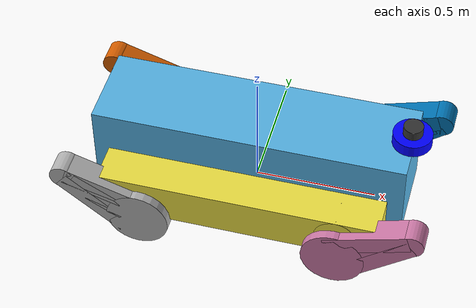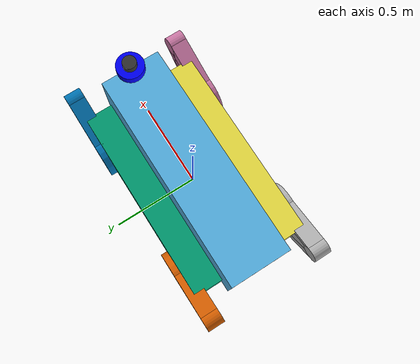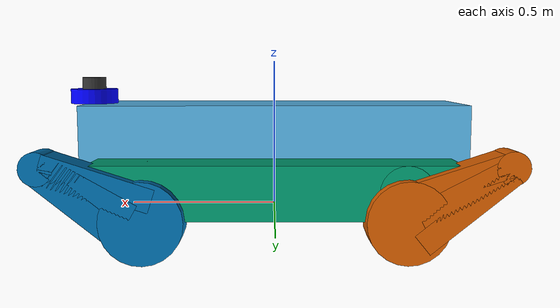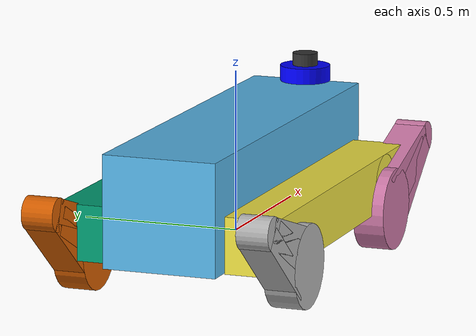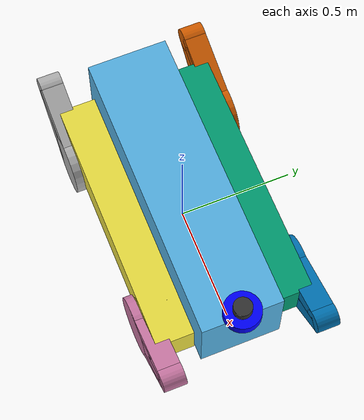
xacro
<?xml version="1.0"?>
<robot name="track" xmlns:xacro="http://www.ros.org/wiki/xacro">

  <!-- Define properties based on your requirements -->
  <xacro:property name="chassis_width" value="0.355"/> <!-- 35.5 cm -->
  <xacro:property name="total_width" value="0.695"/> <!-- 69.5 cm -->
  <xacro:property name="track_width" value="0.165"/> <!-- 16.5 cm -->
  <xacro:property name="vehicle_length" value="1.285"/> <!-- 128.5 cm -->
  <xacro:property name="vehicle_height" value="0.575"/> <!-- 57.5 cm -->

  <!-- Calculated dimensions -->
  <xacro:property name="track_length" value="${vehicle_length * 0.9}"/>
  <xacro:property name="chassis_height" value="${vehicle_height * 0.6}"/>
  <xacro:property name="wheel_radius" value="${vehicle_height * 0.3}"/>
  <xacro:property name="wheel_sep_length" value="${track_length * 0.7}"/>

  <!-- Additional calculated values for positioning -->
  <xacro:property name="track_offset_y" value="${(total_width - track_width) / 2}"/> <!-- 0.265 m from center -->

  <!-- ENHANCED FLIPPER DIMENSIONS -->
  <xacro:property name="flipper_wheel_radius" value="${wheel_radius * 0.75}"/> <!-- Increased from 0.5 to 0.75 -->
  <xacro:property name="flipper_small_wheel_radius" value="${flipper_wheel_radius * 0.4}"/> <!-- Proportionally larger -->
  <xacro:property name="flipper_length" value="0.35"/> <!-- Increased from 0.33 to 0.50 -->
  <xacro:property name="flipper_width" value="${track_width * 0.6}"/> <!-- Increased from 0.3 to 0.4 -->
  <xacro:property name="flipper_bar_height" value="0.075"/> <!-- Increased from 0.055 to 0.075 -->
  <xacro:property name="flipper_middle_bar_width" value="0.28"/> <!-- Increased from 0.2 to 0.28 -->
  <xacro:property name="flipper_middle_bar_height" value="0.09"/> <!-- Increased from 0.07 to 0.09 -->

  <!-- Base Footprint (Ground Plane Reference) -->

  <link name="base_footprint"/>

  <joint name="base_joint" type="fixed">
    <parent link="base_footprint"/>
    <child link="base_link"/>
    <origin xyz="0.0 0.0 0.010" rpy="0 0 0"/>
  </joint>

  <!-- Base Link (Chassis) -->
  <link name="base_link">
    <inertial>
      <origin xyz="0 0 ${chassis_height/2}" rpy="0 0 0"/>
      <mass value="13.14"/>
      <inertia ixx="0.10019" ixy="0" ixz="0"
               iyy="0.345043" iyz="0" izz="0.302044"/>
    </inertial>
    <collision>
      <origin xyz="0 0 ${chassis_height/2}" rpy="0 0 0"/>
      <geometry>
        <box size="${vehicle_length} ${chassis_width} ${chassis_height}"/>
      </geometry>
    </collision>
    <visual>
      <origin xyz="0 0 ${chassis_height/2}" rpy="0 0 0"/>
      <geometry>
        <box size="${vehicle_length} ${chassis_width} ${chassis_height}"/>
      </geometry>
    </visual>
  </link>

  <!-- Left Track -->
  <link name="left_track">
    <inertial>
      <origin xyz="0 0 0.0141" rpy="0 0 0"/>
      <mass value="6.06"/>
      <inertia ixx="0.002731" ixy="0" ixz="0"
               iyy="0.032554" iyz="0.000015" izz="0.031391"/>
    </inertial>
    <collision name="left_track_collision">
      <origin xyz="0 0 ${wheel_radius/2}" rpy="1.5708 0 1.5708"/>
      <geometry>
        <box size="${track_width} ${wheel_radius} ${track_length}"/>
      </geometry>
    </collision>
    <collision name="left_track_collision_1">
      <origin xyz="${wheel_sep_length/2} 0 ${wheel_radius/2}" rpy="1.5708 0 0"/>
      <geometry>
        <cylinder length="${track_width}" radius="${wheel_radius/2}"/>
      </geometry>
    </collision>
    <collision name="left_track_collision_2">
      <origin xyz="${-wheel_sep_length/2} 0 ${wheel_radius/2}" rpy="1.5708 0 0"/>
      <geometry>
        <cylinder length="${track_width}" radius="${wheel_radius/2}"/>
      </geometry>
    </collision>
    <visual name="left_track_visual">
      <origin xyz="0 0 ${wheel_radius/2}" rpy="1.5708 0 1.5708"/>
      <geometry>
        <box size="${track_width} ${wheel_radius} ${track_length}"/>
      </geometry>
    </visual>
    <visual name="left_track_visual_1">
      <origin xyz="${wheel_sep_length/2} 0 ${wheel_radius/2}" rpy="1.5708 0 0"/>
      <geometry>
        <cylinder length="${track_width}" radius="${wheel_radius/2}"/>
      </geometry>
    </visual>
    <visual name="left_track_visual_2">
      <origin xyz="${-wheel_sep_length/2} 0 ${wheel_radius/2}" rpy="1.5708 0 0"/>
      <geometry>
        <cylinder length="${track_width}" radius="${wheel_radius/2}"/>
      </geometry>
    </visual>
  </link>

  <joint name="left_track_j" type="revolute">
    <parent link="base_link"/>
    <child link="left_track"/>
    <origin xyz="0 ${track_offset_y} 0" rpy="0 0 0"/>
    <limit lower="0" upper="0" effort="1000" velocity="0"/>
    <dynamics damping="1000" friction="1000"/>
  </joint>

  <!-- Right Track -->
  <link name="right_track">
    <inertial>
      <origin xyz="0 0 0.0141" rpy="0 0 0"/>
      <mass value="6.06"/>
      <inertia ixx="0.002731" ixy="0" ixz="0"
               iyy="0.032554" iyz="0.000015" izz="0.031391"/>
    </inertial>
    <collision name="right_track_collision">
      <origin xyz="0 0 ${wheel_radius/2}" rpy="1.5708 0 1.5708"/>
      <geometry>
        <box size="${track_width} ${wheel_radius} ${track_length}"/>
      </geometry>
    </collision>
    <collision name="right_track_collision_1">
      <origin xyz="${wheel_sep_length/2} 0 ${wheel_radius/2}" rpy="1.5708 0 0"/>
      <geometry>
        <cylinder length="${track_width}" radius="${wheel_radius/2}"/>
      </geometry>
    </collision>
    <collision name="right_track_collision_2">
      <origin xyz="${-wheel_sep_length/2} 0 ${wheel_radius/2}" rpy="1.5708 0 0"/>
      <geometry>
        <cylinder length="${track_width}" radius="${wheel_radius/2}"/>
      </geometry>
    </collision>
    <visual name="right_track_visual">
      <origin xyz="0 0 ${wheel_radius/2}" rpy="1.5708 0 1.5708"/>
      <geometry>
        <box size="${track_width} ${wheel_radius} ${track_length}"/>
      </geometry>
    </visual>
    <visual name="right_track_visual_1">
      <origin xyz="${wheel_sep_length/2} 0 ${wheel_radius/2}" rpy="1.5708 0 0"/>
      <geometry>
        <cylinder length="${track_width}" radius="${wheel_radius/2}"/>
      </geometry>
    </visual>
    <visual name="right_track_visual_2">
      <origin xyz="${-wheel_sep_length/2} 0 ${wheel_radius/2}" rpy="1.5708 0 0"/>
      <geometry>
        <cylinder length="${track_width}" radius="${wheel_radius/2}"/>
      </geometry>
    </visual>
  </link>

  <joint name="right_track_j" type="revolute">
    <parent link="base_link"/>
    <child link="right_track"/>
    <origin xyz="0 ${-track_offset_y} 0" rpy="0 0 0"/>
    <limit lower="0" upper="0" effort="1000" velocity="0"/>
    <dynamics damping="1000" friction="1000"/>
  </joint>

  <!-- Front Left Flipper (Enhanced) -->
  <link name="front_left_flipper">
    <inertial>
      <origin xyz="0.12 0 0" rpy="0 0 0"/> <!-- Adjusted for longer flipper -->
      <mass value="1.2"/> <!-- Increased mass for bigger flipper -->
      <inertia ixx="0.005" ixy="0" ixz="0"
               iyy="0.035" iyz="0" izz="0.032"/>
    </inertial>
    <collision name="front_left_flipper_collision_large_wheel">
      <origin xyz="0 0 0" rpy="1.5708 0 0"/>
      <geometry>
        <cylinder length="${flipper_width}" radius="${flipper_wheel_radius}"/>
      </geometry>
    </collision>
    <collision name="front_left_flipper_collision_small_wheel">
      <origin xyz="${flipper_length} 0 0" rpy="1.5708 0 0"/>
      <geometry>
        <cylinder length="${flipper_width}" radius="${flipper_small_wheel_radius}"/>
      </geometry>
    </collision>
    <collision name="front_left_flipper_collision_top_bar">
      <origin xyz="${flipper_length/2} 0 0.045" rpy="0 0.184162 0"/>
      <geometry>
        <box size="${flipper_length} ${flipper_width} ${flipper_bar_height}"/>
      </geometry>
    </collision>
    <collision name="front_left_flipper_collision_bottom_bar">
      <origin xyz="${flipper_length/2} 0 -0.045" rpy="0 -0.184162 0"/>
      <geometry>
        <box size="${flipper_length} ${flipper_width} ${flipper_bar_height}"/>
      </geometry>
    </collision>
    <collision name="front_left_flipper_collision_middle_bar">
      <origin xyz="${flipper_length/2} 0 0.004" rpy="0 -0.02 0"/>
      <geometry>
        <box size="${flipper_middle_bar_width} ${flipper_width} ${flipper_middle_bar_height}"/>
      </geometry>
    </collision>
    <visual name="front_left_flipper_visual_large_wheel">
      <origin xyz="0 0 0" rpy="1.5708 0 0"/>
      <geometry>
        <cylinder length="${flipper_width}" radius="${flipper_wheel_radius}"/>
      </geometry>
    </visual>
    <visual name="front_left_flipper_visual_small_wheel">
      <origin xyz="${flipper_length} 0 0" rpy="1.5708 0 0"/>
      <geometry>
        <cylinder length="${flipper_width}" radius="${flipper_small_wheel_radius}"/>
      </geometry>
    </visual>
    <visual name="front_left_flipper_visual_top_bar">
      <origin xyz="${flipper_length/2} 0 0.045" rpy="0 0.184162 0"/>
      <geometry>
        <box size="${flipper_length} ${flipper_width} ${flipper_bar_height}"/>
      </geometry>
    </visual>
    <visual name="front_left_flipper_visual_bottom_bar">
      <origin xyz="${flipper_length/2} 0 -0.045" rpy="0 -0.184162 0"/>
      <geometry>
        <box size="${flipper_length} ${flipper_width} ${flipper_bar_height}"/>
      </geometry>
    </visual>
    <visual name="front_left_flipper_visual_middle_bar">
      <origin xyz="${flipper_length/2} 0 0.004" rpy="0 -0.02 0"/>
      <geometry>
        <box size="${flipper_middle_bar_width} ${flipper_width} ${flipper_middle_bar_height}"/>
      </geometry>
    </visual>
  </link>

  <joint name="front_left_flipper_j" type="revolute">
    <parent link="left_track"/>
    <child link="front_left_flipper"/>
    <origin xyz="${wheel_sep_length/2} ${track_width * 0.43} 0.001" rpy="0 -0.4965 0"/>
    <limit lower="0" upper="0" effort="1000" velocity="0"/>
    <dynamics damping="1000" friction="1000"/>
  </joint>

  <!-- Rear Left Flipper (Enhanced) -->
  <link name="rear_left_flipper">
    <inertial>
      <origin xyz="0.12 0 0" rpy="0 0 0"/>
      <mass value="1.2"/>
      <inertia ixx="0.005" ixy="0" ixz="0"
               iyy="0.035" iyz="0" izz="0.032"/>
    </inertial>
    <collision name="rear_left_flipper_collision_large_wheel">
      <origin xyz="0 0 0" rpy="1.5708 0 0"/>
      <geometry>
        <cylinder length="${flipper_width}" radius="${flipper_wheel_radius}"/>
      </geometry>
    </collision>
    <collision name="rear_left_flipper_collision_small_wheel">
      <origin xyz="${flipper_length} 0 0" rpy="1.5708 0 0"/>
      <geometry>
        <cylinder length="${flipper_width}" radius="${flipper_small_wheel_radius}"/>
      </geometry>
    </collision>
    <collision name="rear_left_flipper_collision_top_bar">
      <origin xyz="${flipper_length/2} 0 0.045" rpy="0 0.184162 0"/>
      <geometry>
        <box size="${flipper_length} ${flipper_width} ${flipper_bar_height}"/>
      </geometry>
    </collision>
    <collision name="rear_left_flipper_collision_bottom_bar">
      <origin xyz="${flipper_length/2} 0 -0.045" rpy="0 -0.184162 0"/>
      <geometry>
        <box size="${flipper_length} ${flipper_width} ${flipper_bar_height}"/>
      </geometry>
    </collision>
    <collision name="rear_left_flipper_collision_middle_bar">
      <origin xyz="${flipper_length/2} 0 0.004" rpy="0 -0.02 0"/>
      <geometry>
        <box size="${flipper_middle_bar_width} ${flipper_width} ${flipper_middle_bar_height}"/>
      </geometry>
    </collision>
    <visual name="rear_left_flipper_visual_large_wheel">
      <origin xyz="0 0 0" rpy="1.5708 0 0"/>
      <geometry>
        <cylinder length="${flipper_width}" radius="${flipper_wheel_radius}"/>
      </geometry>
    </visual>
    <visual name="rear_left_flipper_visual_small_wheel">
      <origin xyz="${flipper_length} 0 0" rpy="1.5708 0 0"/>
      <geometry>
        <cylinder length="${flipper_width}" radius="${flipper_small_wheel_radius}"/>
      </geometry>
    </visual>
    <visual name="rear_left_flipper_visual_top_bar">
      <origin xyz="${flipper_length/2} 0 0.045" rpy="0 0.184162 0"/>
      <geometry>
        <box size="${flipper_length} ${flipper_width} ${flipper_bar_height}"/>
      </geometry>
    </visual>
    <visual name="rear_left_flipper_visual_bottom_bar">
      <origin xyz="${flipper_length/2} 0 -0.045" rpy="0 -0.184162 0"/>
      <geometry>
        <box size="${flipper_length} ${flipper_width} ${flipper_bar_height}"/>
      </geometry>
    </visual>
    <visual name="rear_left_flipper_visual_middle_bar">
      <origin xyz="${flipper_length/2} 0 0.004" rpy="0 -0.02 0"/>
      <geometry>
        <box size="${flipper_middle_bar_width} ${flipper_width} ${flipper_middle_bar_height}"/>
      </geometry>
    </visual>
  </link>

  <joint name="rear_left_flipper_j" type="revolute">
    <parent link="left_track"/>
    <child link="rear_left_flipper"/>
    <origin xyz="${-wheel_sep_length/2} ${track_width * 0.43} 0.001" rpy="3.14159 -0.5 3.14159"/>
    <limit lower="0" upper="0" effort="1000" velocity="0"/>
    <dynamics damping="1000" friction="1000"/>
  </joint>

  <!-- Front Right Flipper (Enhanced) -->
  <link name="front_right_flipper">
    <inertial>
      <origin xyz="-0.12 0 0" rpy="0 0 0"/>
      <mass value="1.2"/>
      <inertia ixx="0.005" ixy="0" ixz="0"
               iyy="0.035" iyz="0" izz="0.032"/>
    </inertial>
    <collision name="front_right_flipper_collision_large_wheel">
      <origin xyz="0 0 0" rpy="1.5708 0 0"/>
      <geometry>
        <cylinder length="${flipper_width}" radius="${flipper_wheel_radius}"/>
      </geometry>
    </collision>
    <collision name="front_right_flipper_collision_small_wheel">
      <origin xyz="${-flipper_length} 0 0" rpy="1.5708 0 0"/>
      <geometry>
        <cylinder length="${flipper_width}" radius="${flipper_small_wheel_radius}"/>
      </geometry>
    </collision>
    <collision name="front_right_flipper_collision_top_bar">
      <origin xyz="${-flipper_length/2} 0 0.045" rpy="0 0.184162 -3.14159"/>
      <geometry>
        <box size="${flipper_length} ${flipper_width} ${flipper_bar_height}"/>
      </geometry>
    </collision>
    <collision name="front_right_flipper_collision_bottom_bar">
      <origin xyz="${-flipper_length/2} 0 -0.045" rpy="0 -0.184162 -3.14159"/>
      <geometry>
        <box size="${flipper_length} ${flipper_width} ${flipper_bar_height}"/>
      </geometry>
    </collision>
    <collision name="front_right_flipper_collision_middle_bar">
      <origin xyz="${-flipper_length/2} 0 0.004" rpy="0 -0.02 -3.14159"/>
      <geometry>
        <box size="${flipper_middle_bar_width} ${flipper_width} ${flipper_middle_bar_height}"/>
      </geometry>
    </collision>
    <visual name="front_right_flipper_visual_large_wheel">
      <origin xyz="0 0 0" rpy="1.5708 0 0"/>
      <geometry>
        <cylinder length="${flipper_width}" radius="${flipper_wheel_radius}"/>
      </geometry>
    </visual>
    <visual name="front_right_flipper_visual_small_wheel">
      <origin xyz="${-flipper_length} 0 0" rpy="1.5708 0 0"/>
      <geometry>
        <cylinder length="${flipper_width}" radius="${flipper_small_wheel_radius}"/>
      </geometry>
    </visual>
    <visual name="front_right_flipper_visual_top_bar">
      <origin xyz="${-flipper_length/2} 0 0.045" rpy="0 0.184162 -3.14159"/>
      <geometry>
        <box size="${flipper_length} ${flipper_width} ${flipper_bar_height}"/>
      </geometry>
    </visual>
    <visual name="front_right_flipper_visual_bottom_bar">
      <origin xyz="${-flipper_length/2} 0 -0.045" rpy="0 -0.184162 -3.14159"/>
      <geometry>
        <box size="${flipper_length} ${flipper_width} ${flipper_bar_height}"/>
      </geometry>
    </visual>
    <visual name="front_right_flipper_visual_middle_bar">
      <origin xyz="${-flipper_length/2} 0 0.004" rpy="0 -0.02 -3.14159"/>
      <geometry>
        <box size="${flipper_middle_bar_width} ${flipper_width} ${flipper_middle_bar_height}"/>
      </geometry>
    </visual>
  </link>

  <joint name="front_right_flipper_j" type="revolute">
    <parent link="right_track"/>
    <child link="front_right_flipper"/>
    <origin xyz="${wheel_sep_length/2} ${-track_width * 0.43} 0.001" rpy="3.14159 0.5 3.14159"/>
    <limit lower="0" upper="0" effort="1000" velocity="0"/>
    <dynamics damping="1000" friction="1000"/>
  </joint>

  <!-- Rear Right Flipper (Enhanced) -->
  <link name="rear_right_flipper">
    <inertial>
      <origin xyz="-0.12 0 0" rpy="0 0 0"/>
      <mass value="1.2"/>
      <inertia ixx="0.005" ixy="0" ixz="0"
               iyy="0.035" iyz="0" izz="0.032"/>
    </inertial>
    <collision name="rear_right_flipper_collision_large_wheel">
      <origin xyz="0 0 0" rpy="1.5708 0 0"/>
      <geometry>
        <cylinder length="${flipper_width}" radius="${flipper_wheel_radius}"/>
      </geometry>
    </collision>
    <collision name="rear_right_flipper_collision_small_wheel">
      <origin xyz="${-flipper_length} 0 0" rpy="1.5708 0 0"/>
      <geometry>
        <cylinder length="${flipper_width}" radius="${flipper_small_wheel_radius}"/>
      </geometry>
    </collision>
    <collision name="rear_right_flipper_collision_top_bar">
      <origin xyz="${-flipper_length/2} 0 0.045" rpy="0 0.184162 -3.14159"/>
      <geometry>
        <box size="${flipper_length} ${flipper_width} ${flipper_bar_height}"/>
      </geometry>
    </collision>
    <collision name="rear_right_flipper_collision_bottom_bar">
      <origin xyz="${-flipper_length/2} 0 -0.045" rpy="0 -0.184162 -3.14159"/>
      <geometry>
        <box size="${flipper_length} ${flipper_width} ${flipper_bar_height}"/>
      </geometry>
    </collision>
    <collision name="rear_right_flipper_collision_middle_bar">
      <origin xyz="${-flipper_length/2} 0 0.004" rpy="0 -0.02 -3.14159"/>
      <geometry>
        <box size="${flipper_middle_bar_width} ${flipper_width} ${flipper_middle_bar_height}"/>
      </geometry>
    </collision>
    <visual name="rear_right_flipper_visual_large_wheel">
      <origin xyz="0 0 0" rpy="1.5708 0 0"/>
      <geometry>
        <cylinder length="${flipper_width}" radius="${flipper_wheel_radius}"/>
      </geometry>
    </visual>
    <visual name="rear_right_flipper_visual_small_wheel">
      <origin xyz="${-flipper_length} 0 0" rpy="1.5708 0 0"/>
      <geometry>
        <cylinder length="${flipper_width}" radius="${flipper_small_wheel_radius}"/>
      </geometry>
    </visual>
    <visual name="rear_right_flipper_visual_top_bar">
      <origin xyz="${-flipper_length/2} 0 0.045" rpy="0 0.184162 -3.14159"/>
      <geometry>
        <box size="${flipper_length} ${flipper_width} ${flipper_bar_height}"/>
      </geometry>
    </visual>
    <visual name="rear_right_flipper_visual_bottom_bar">
      <origin xyz="${-flipper_length/2} 0 -0.045" rpy="0 -0.184162 -3.14159"/>
      <geometry>
        <box size="${flipper_length} ${flipper_width} ${flipper_bar_height}"/>
      </geometry>
    </visual>
    <visual name="rear_right_flipper_visual_middle_bar">
      <origin xyz="${-flipper_length/2} 0 0.004" rpy="0 -0.02 -3.14159"/>
      <geometry>
        <box size="${flipper_middle_bar_width} ${flipper_width} ${flipper_middle_bar_height}"/>
      </geometry>
    </visual>
  </link>

  <joint name="rear_right_flipper_j" type="revolute">
    <parent link="right_track"/>
    <child link="rear_right_flipper"/>
    <origin xyz="${-wheel_sep_length/2} ${-track_width * 0.43} 0.001" rpy="0 0.4962 0"/>
    <limit lower="0" upper="0" effort="1000" velocity="0"/>
    <dynamics damping="1000" friction="1000"/>
  </joint>

  <!-- Velodyne Lidar -->
  <link name="velodyne">
    <inertial>
      <origin xyz="0 0 0" rpy="0 0 0"/>
      <mass value="0.2"/>
      <inertia ixx="0.001" ixy="0" ixz="0"
               iyy="0.001" iyz="0" izz="0.001"/>
    </inertial>
    <collision>
      <origin xyz="0 0 0" rpy="0 0 0"/>
      <geometry>
        <cylinder length="0.05" radius="0.08"/>
      </geometry>
    </collision>
    <visual>
      <origin xyz="0 0 0" rpy="0 0 0"/>
      <geometry>
        <cylinder length="0.05" radius="0.08"/>
      </geometry>
      <material name="blue">
        <color rgba="0 0 1 1"/>
      </material>
    </visual>
  </link>

  <joint name="velodyne_joint" type="fixed">
    <parent link="base_link"/>
    <child link="velodyne"/>
    <origin xyz="0.63 0 ${chassis_height + 0.025}" rpy="0 0 0"/>
  </joint>

  <!-- Gazebo-specific elements -->
  <gazebo reference="base_link">
    <sensor name="imu_sensor" type="imu">
      <always_on>1</always_on>
      <update_rate>1</update_rate>
      <visualize>true</visualize>
      <topic>imu</topic>
    </sensor>
  </gazebo>

  <gazebo reference="left_track">
    <mu1>0.7</mu1>
    <mu2>150</mu2>
    <fdir1>0 1 0</fdir1>
  </gazebo>

  <gazebo reference="right_track">
    <mu1>0.7</mu1>
    <mu2>150</mu2>
    <fdir1>0 1 0</fdir1>
  </gazebo>

  <gazebo reference="front_left_flipper">
    <mu1>0.7</mu1>
    <mu2>150</mu2>
    <fdir1>0 1 0</fdir1>
    <selfCollide>true</selfCollide>
    <maxContacts>20</maxContacts>
  </gazebo>

  <gazebo reference="rear_left_flipper">
    <mu1>0.7</mu1>
    <mu2>150</mu2>
    <fdir1>0 1 0</fdir1>
    <selfCollide>true</selfCollide>
    <maxContacts>20</maxContacts>
  </gazebo>

  <gazebo reference="front_right_flipper">
    <mu1>0.7</mu1>
    <mu2>150</mu2>
    <fdir1>0 1 0</fdir1>
    <selfCollide>true</selfCollide>
    <maxContacts>20</maxContacts>
  </gazebo>

  <gazebo reference="rear_right_flipper">
    <mu1>0.7</mu1>
    <mu2>150</mu2>
    <fdir1>0 1 0</fdir1>
    <selfCollide>true</selfCollide>
    <maxContacts>20</maxContacts>
  </gazebo>

  <gazebo reference="velodyne">
    <material>Gazebo/Blue</material>
    <sensor name="velodyne" type="gpu_lidar">
      <update_rate>10</update_rate>
      <visualize>true</visualize>
      <always_on>true</always_on>
      <gz_frame_id>velodyne</gz_frame_id>
      <topic>velodyne</topic>
      <lidar>
        <scan>
          <horizontal>
            <samples>2048</samples>
            <resolution>1</resolution>
            <min_angle>-3.14159265359</min_angle>
            <max_angle>3.14159265359</max_angle>
          </horizontal>
          <vertical>
            <samples>128</samples>
            <resolution>1</resolution>
            <min_angle>-0.55</min_angle>
            <max_angle>0.26</max_angle>
          </vertical>
        </scan>
        <range>
          <min>0.75</min>
          <max>131.0</max>
          <resolution>0.01</resolution>
        </range>
      </lidar>
    </sensor>
  </gazebo>

  <link name="rplidar">
    <inertial>
      <origin xyz="0 0 0" rpy="0 0 0"/>
      <mass value="0.15"/>
      <inertia ixx="0.0001" ixy="0" ixz="0"
               iyy="0.0001" iyz="0" izz="0.0001"/>
    </inertial>
    <collision>
      <origin xyz="0 0 0" rpy="0 0 0"/>
      <geometry>
        <cylinder length="0.04" radius="0.04"/>
      </geometry>
    </collision>
    <visual>
      <origin xyz="0 0 0" rpy="0 0 0"/>
      <geometry>
        <cylinder length="0.04" radius="0.04"/>
      </geometry>
      <material name="black">
        <color rgba="0.2 0.2 0.2 1"/>
      </material>
    </visual>
  </link>

  <joint name="rplidar_joint" type="fixed">
    <parent link="velodyne"/>
    <child link="rplidar"/>
    <!-- Positioned on top of Velodyne (0.025 is half of Velodyne height + 0.02 half of RP LiDAR height + small gap) -->
    <origin xyz="0 0 0.045" rpy="0 0 0"/>
  </joint>

  <!-- Gazebo RP LIDAR Plugin -->
  <gazebo reference="rplidar">
    <material>Gazebo/Black</material>
    <sensor name="rplidar" type="gpu_lidar">
      <always_on>true</always_on>
      <visualize>false</visualize>
      <update_rate>10</update_rate>
      <topic>scan</topic>
      <gz_frame_id>velodyne</gz_frame_id>
      <lidar>
        <scan>
          <horizontal>
            <samples>360</samples>
            <resolution>1.000000</resolution>
            <min_angle>-3.14159</min_angle>
            <max_angle>3.14159</max_angle>
          </horizontal>
        </scan>
        <range>
          <min>0.75</min>
          <max>15.0</max>
          <resolution>0.01</resolution>
        </range>
        <noise>
          <type>gaussian</type>
          <mean>0.0</mean>
          <stddev>0.01</stddev>
        </noise>
      </lidar>
    </sensor>
  </gazebo>

  <!-- Gazebo Plugins -->
  <gazebo>
    <plugin name="gz::sim::systems::TrackedVehicle" filename="gz-sim-tracked-vehicle-system">
      <left_track>
        <link>left_track</link>
      </left_track>
      <left_track>
        <link>front_left_flipper</link>
      </left_track>
      <left_track>
        <link>rear_left_flipper</link>
      </left_track>
      <right_track>
        <link>right_track</link>
      </right_track>
      <right_track>
        <link>front_right_flipper</link>
      </right_track>
      <right_track>
        <link>rear_right_flipper</link>
      </right_track>
      <topic>cmd_vel</topic>
      <tracks_separation>${track_offset_y * 2}</tracks_separation>
      <tracks_height>${wheel_radius}</tracks_height>
      <steering_efficiency>0.7</steering_efficiency>
      <odom_publish_frequency>50</odom_publish_frequency>
      <odom_topic>/odom</odom_topic>
      <tf_topic>/tf</tf_topic>
      <frame_id>odom</frame_id>
      <child_frame_id>base_footprint</child_frame_id>
    </plugin>

    <plugin name="gz::sim::systems::TrackController" filename="gz-sim-track-controller-system">
      <link>left_track</link>
      <min_velocity>-1.0</min_velocity>
      <max_velocity>3.0</max_velocity>
    </plugin>

    <plugin name="gz::sim::systems::TrackController" filename="gz-sim-track-controller-system">
      <link>right_track</link>
      <min_velocity>-1.0</min_velocity>
      <max_velocity>3.0</max_velocity>
    </plugin>

    <plugin name="gz::sim::systems::TrackController" filename="gz-sim-track-controller-system">
      <link>front_left_flipper</link>
      <min_velocity>-1.0</min_velocity>
      <max_velocity>3.0</max_velocity>
    </plugin>

    <plugin name="gz::sim::systems::TrackController" filename="gz-sim-track-controller-system">
      <link>rear_left_flipper</link>
      <min_velocity>-1.0</min_velocity>
      <max_velocity>3.0</max_velocity>
    </plugin>

    <plugin name="gz::sim::systems::TrackController" filename="gz-sim-track-controller-system">
      <link>front_right_flipper</link>
      <min_velocity>-1.0</min_velocity>
      <max_velocity>3.0</max_velocity>
    </plugin>

    <plugin name="gz::sim::systems::TrackController" filename="gz-sim-track-controller-system">
      <link>rear_right_flipper</link>
      <min_velocity>-1.0</min_velocity>
      <max_velocity>3.0</max_velocity>
    </plugin>

    <plugin filename="gz-sim-joint-state-publisher-system" name="gz::sim::systems::JointStatePublisher">
      <topic>joint_states</topic>
      <update_rate>30</update_rate>
      <joint_name>left_track_j</joint_name>
      <joint_name>right_track_j</joint_name>
      <joint_name>front_left_flipper_j</joint_name>
      <joint_name>front_right_flipper_j</joint_name>
      <joint_name>rear_left_flipper_j</joint_name>
      <joint_name>rear_right_flipper_j</joint_name>
    </plugin>
  </gazebo>

</robot>
